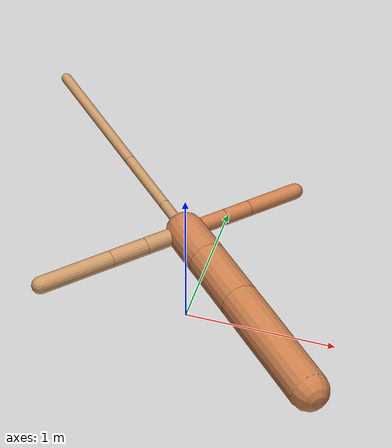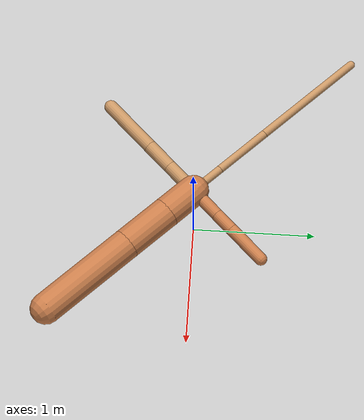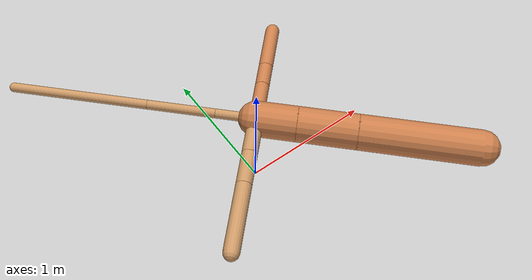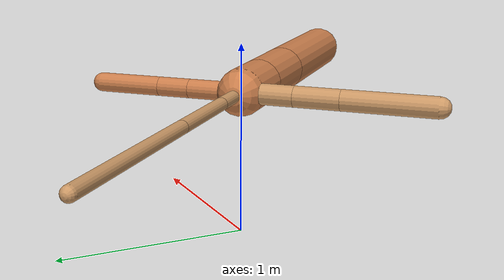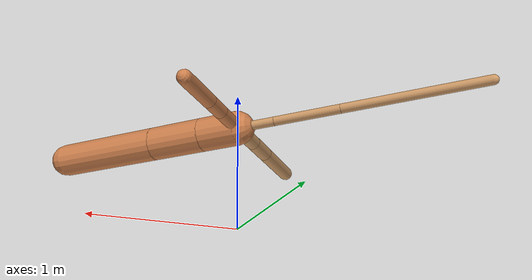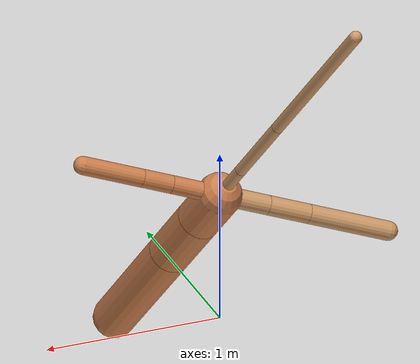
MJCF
<?xml version="1.0" ?>
<mujoco model="ant">

	<compiler angle="degree" coordinate="local" inertiafromgeom="true"/>

	<option integrator="RK4" timestep="0.01"/>

	<custom>

		<numeric data="0.0 0.0 0.55 1.0 0.0 0.0 0.0 0.0 1.0 0.0 -1.0 0.0 -1.0 0.0 1.0" name="init_qpos"/>

	</custom>

	<default>

		<joint armature="1" damping="1" limited="true"/>

		<geom conaffinity="0" condim="3" density="5.0" friction="1.5 0.1 0.1" margin="0.01" rgba="0.8 0.6 0.4 1"/>

	</default>

	<worldbody>

		<body name="torso" pos="0 0 0.75">

			<geom name="torso_geom" pos="0 0 0" size="0.088092653261407" type="sphere"/>

			<!--joint armature="0" damping="0" limited="false" margin="0.01" name="root" pos="0 0 0" type="free"/-->

			<body name="front_left_leg" pos="0 0 0">

				<geom fromto="0 0 0 0.2 0.2 0" name="aux_1_geom" size="0.0505582521493719" type="capsule" rgba=".8 .5 .3 1"/>

				<body name="aux_1" pos="0.2 0.2 0">

					<joint axis="0 0 1" name="hip_1" pos="0.0 0.0 0.0" range="-40 40" type="hinge"/>

					<geom fromto="0 0 0 0.12002320461676784 0.12002320461676784 0" name="left_leg_geom" size="0.0505582521493719" type="capsule" rgba=".8 .5 .3 1"/>

					<body pos="0.12002320461676784 0.12002320461676784 0" name="front_left_foot">

						<joint axis="-1 1 0" name="ankle_1" pos="0.0 0.0 0.0" range="30 100" type="hinge"/>

						<geom fromto="0 0 0 0.24004640923353568 0.24004640923353568 0" name="left_ankle_geom" size="0.0505582521493719" type="capsule" rgba=".8 .5 .3 1"/>

					</body>

				</body>

			</body>

			<body name="front_right_leg" pos="0 0 0">

				<geom fromto="0 0 0 -0.2 0.2 0" name="aux_2_geom" size="0.03330976231137403" type="capsule"/>

				<body name="aux_2" pos="-0.2 0.2 0">

					<joint axis="0 0 1" name="hip_2" pos="0.0 0.0 0.0" range="-40 40" type="hinge"/>

					<geom fromto="0 0 0 -0.33842388224402886 0.33842388224402886 0" name="right_leg_geom" size="0.03330976231137403" type="capsule"/>

					<body pos="-0.33842388224402886 0.33842388224402886 0" name="front_right_foot">

						<joint axis="1 1 0" name="ankle_2" pos="0.0 0.0 0.0" range="-100 -30" type="hinge"/>

						<geom fromto="0 0 0 -0.6768477644880577 0.6768477644880577 0" name="right_ankle_geom" size="0.03330976231137403" type="capsule"/>

					</body>

				</body>

			</body>

			<body name="left_back_leg" pos="0 0 0">

				<geom fromto="0 0 0 -0.2 -0.2 0" name="aux_3_geom" size="0.05501583795937613" type="capsule"/>

				<body name="aux_3" pos="-0.2 -0.2 0">

					<joint axis="0 0 1" name="hip_3" pos="0.0 0.0 0.0" range="-40 40" type="hinge"/>

					<geom fromto="0 0 0 -0.1700879772483339 -0.1700879772483339 0" name="back_leg_geom" size="0.05501583795937613" type="capsule"/>

					<body pos="-0.1700879772483339 -0.1700879772483339 0" name="left_back_foot">

						<joint axis="-1 1 0" name="ankle_3" pos="0.0 0.0 0.0" range="-100 -30" type="hinge"/>

						<geom fromto="0 0 0 -0.3401759544966678 -0.3401759544966678 0" name="third_ankle_geom" size="0.05501583795937613" type="capsule"/>

					</body>

				</body>

			</body>

			<body name="right_back_leg" pos="0 0 0">

				<geom fromto="0 0 0 0.2 -0.2 0" name="aux_4_geom" size="0.12483712361299479" type="capsule" rgba=".8 .5 .3 1"/>

				<body name="aux_4" pos="0.2 -0.2 0">

					<joint axis="0 0 1" name="hip_4" pos="0.0 0.0 0.0" range="-40 40" type="hinge"/>

					<geom fromto="0 0 0 0.2916454772799268 -0.2916454772799268 0" name="rightback_leg_geom" size="0.12483712361299479" type="capsule" rgba=".8 .5 .3 1"/>

					<body pos="0.2916454772799268 -0.2916454772799268 0" name="right_back_foot">

						<joint axis="1 1 0" name="ankle_4" pos="0.0 0.0 0.0" range="30 100" type="hinge"/>

						<geom fromto="0 0 0 0.5832909545598536 -0.5832909545598536 0" name="fourth_ankle_geom" size="0.12483712361299479" type="capsule" rgba=".8 .5 .3 1"/>

					</body>

				</body>

			</body>

		</body>

	</worldbody>

	<actuator>

		<motor ctrllimited="true" ctrlrange="-1.0 1.0" joint="hip_4" gear="150"/>

		<motor ctrllimited="true" ctrlrange="-1.0 1.0" joint="ankle_4" gear="150"/>

		<motor ctrllimited="true" ctrlrange="-1.0 1.0" joint="hip_1" gear="150"/>

		<motor ctrllimited="true" ctrlrange="-1.0 1.0" joint="ankle_1" gear="150"/>

		<motor ctrllimited="true" ctrlrange="-1.0 1.0" joint="hip_2" gear="150"/>

		<motor ctrllimited="true" ctrlrange="-1.0 1.0" joint="ankle_2" gear="150"/>

		<motor ctrllimited="true" ctrlrange="-1.0 1.0" joint="hip_3" gear="150"/>

		<motor ctrllimited="true" ctrlrange="-1.0 1.0" joint="ankle_3" gear="150"/>

	</actuator>

</mujoco>
